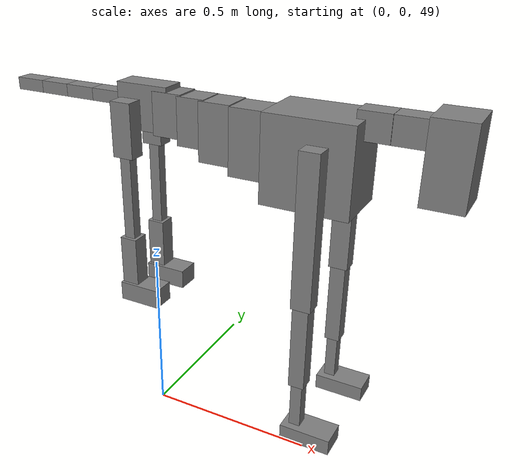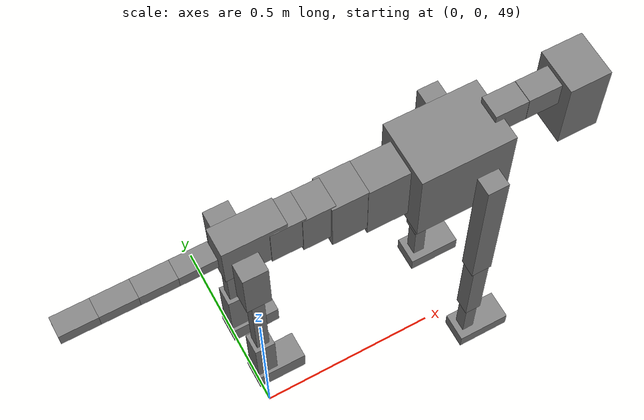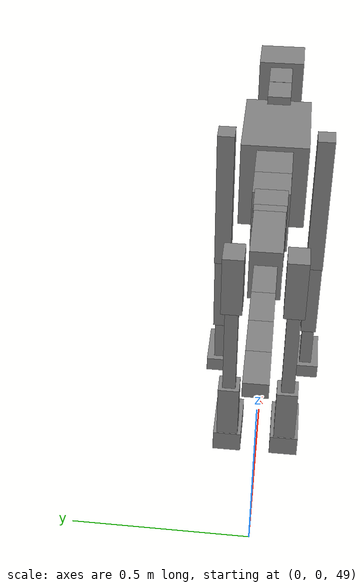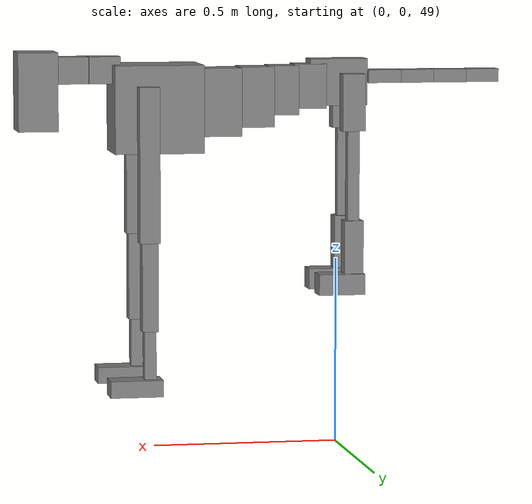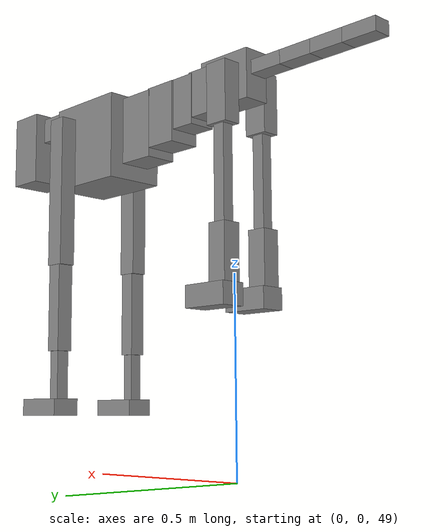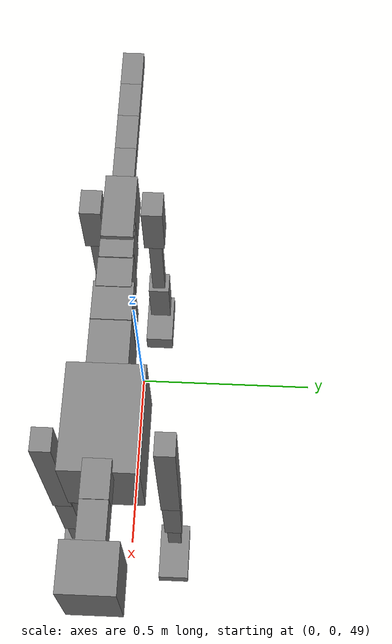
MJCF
<mujoco model="dog">

    <default>
        <joint armature="0.02" stiffness="1" damping="0.2" limited="true"/>
        <geom condim="3" friction="1 0.05 0.05" margin="0.01"/>
        <motor ctrllimited="true" ctrlrange="-1.0 1.0" forcelimited="true" gear="50"/>
    </default>

    <compiler inertiafromgeom="true" angle="radian"/>

    <option timestep="0.016" iterations="50" tolerance="1e-10" solver="Newton" jacobian="dense" cone="pyramidal"/>

    <size nconmax="20000" njmax="60000" nstack="5000000"/>
    <visual>
        <map force="0.1" zfar="30"/>
        <rgba haze="0.15 0.25 0.35 1"/>
        <quality shadowsize="2048"/>
        <global offwidth="800" offheight="800"/>
    </visual>

    <asset>
        <texture type="skybox" builtin="gradient" rgb1="0.3 0.5 0.7" rgb2="0 0 0" width="512" height="512"/>
        <texture name="texplane" type="2d" builtin="checker" rgb1=".2 .3 .4" rgb2=".1 0.15 0.2" width="512" height="512"
                 mark="cross" markrgb=".8 .8 .8"/>
        <texture name="texgeom" type="cube" builtin="flat" mark="cross" width="127" height="1278" rgb1="0.8 0.6 0.4"
                 rgb2="0.8 0.6 0.4" markrgb="1 1 1" random="0.01"/>

        <material name="matplane" reflectance="0.3" texture="texplane" texrepeat="1 1" texuniform="true"/>
        <material name="matgeom" texture="texgeom" texuniform="true" rgba="0.8 0.6 .4 1"/>
    </asset>

    <worldbody>
        <geom name="floor" pos="0 0 0" size="0 0 .25" type="plane" material="matplane" condim="3"/>

        <light directional="false" diffuse=".2 .2 .2" specular="0 0 0" pos="0 0 5" dir="0 0 -1" castshadow="false"/>
        <light mode="targetbodycom" target="torso" directional="false" diffuse=".8 .8 .8" specular="0.3 0.3 0.3"
               pos="0 0 4.0" dir="0 0 -1"/>

        <body name="root" pos="0 0 50">
            <freejoint name="root_1"/>
            <geom type="box" pos="0 0 -0.02" size="0.0774  0.0358  0.063" density="2030"/>

            <body name="spine1" pos="0.054 0 0">
                <joint name="spine1_y" axis="0 1 0" range="0 0.7" limited="true"/>
                <geom type="box" pos="0.02375 0 -0.03" size="0.04375  0.0375  0.05985" density="2030"/>

                <body name="spine2" pos="0.0612 0 0">
                    <joint name="spine2_y" axis="0 1 0" range="-0.15 0.15" limited="true"/>
                    <geom type="box" pos="0.03555  0  -0.04" size="0.04055  0.039  0.06615" density="2030"/>

                    <body name="spine3" pos="0.0730 0 0">
                        <joint name="spine3_y" axis="0 1 0" range="-0.15 0.15" limited="true"/>
                        <geom type="box" pos="0.03555  0  -0.057" size="0.04555  0.0445  0.081" density="2030"/>

                        <body name="spine4" pos="0.0780 0 0">
                            <joint name="spine4_y" axis="0 1 0" range="-0.15 0.15" limited="true"/>
                            <geom type="box" pos="0.05265  0  -0.07" size="0.05265  0.045  0.09135" density="2030"/>

                            <body name="torso" pos="0.1082 0 0">
                                <joint name="torso_y" axis="0 1 0" range="-0.15 0.15" limited="true"/>
                                <geom type="box" pos="0.11925  0  -0.085" size="0.11925  0.085  0.11745"
                                      density="2030"/>

                                <body name="neck1" pos="0.2160  0   0.0180">
                                    <joint name="neck1_y" axis="0 1 0" range="-1.2  -1" limited="true"/>
                                    <geom type="box" pos="0.0423  0  0" size="0.0423  0.03  0.036" density="2325"/>

                                    <body name="neck2" pos="0.0853  0  0">
                                        <joint name="neck2_y" axis="0 1 0" range="0.1  0" limited="true"/>
                                        <geom type="box" pos="0.0423  0  0" size="0.0423  0.03  0.036" density="2325"/>

                                        <body name="head" pos="0.0853  0  0">
                                            <joint name="head_y" axis="0 1 0" range="-0.3  -0.2" limited="true"/>
                                            <geom type="box" pos="0.0531  0  -0.055" size="0.0531  0.06  0.1044"
                                                  density="4030"/>

                                        </body>
                                    </body>
                                </body>

                                <body name="front_shoulder" pos="0.156  0   -0.0480">
                                    <joint name="front_shoulder_y" axis="0 1 0" range="-1 1.5" limited="true"/>
                                    <geom type="box" pos="0 0.13 -0.1794" size="0.0271  0.0231  0.2061" density="1158"/>
                                    <geom type="box" pos="0 -0.13 -0.1794" size="0.0271  0.0231  0.2061"
                                          density="1158"/>

                                    <body name="front_elbow" pos="0  0  -0.3588">
                                        <joint name="front_elbow_y" axis="0 1 0" range="-2 0" limited="true"/>
                                        <geom type="box" pos="0 0.13 -0.1307" size="0.0216  0.0221  0.1307"
                                              density="1081"/>
                                        <geom type="box" pos="0 -0.13 -0.1307" size="0.0216  0.0221  0.1307"
                                              density="1081"/>

                                        <body name="front_wrist" pos="0  0  -0.2613">
                                            <joint name="front_wrist_y" axis="0 1 0" range="-0.2 0" limited="true"/>
                                            <geom type="box" pos="0 0.13 -0.0716" size="0.0156  0.0173  0.0847"
                                                  density="1664"/>
                                            <geom type="box" pos="0 -0.13 -0.0716" size="0.0156  0.0173  0.0847"
                                                  density="1664"/>

                                            <body name="front_finger_end" pos="0  0  -0.1431">
                                                <joint name="front_finger_y" axis="0 1 0" range="-0.4 1"
                                                       limited="true"/>
                                                <geom type="box" pos="0.0385  0.13  -0.0072"
                                                      size="0.0706  0.0385  0.0222" density="1515"/>
                                                <geom type="box" pos="0.0385  -0.13  -0.0072"
                                                      size="0.0706  0.0385  0.0222" density="1515"/>

                                            </body>

                                        </body>
                                    </body>
                                </body>

                            </body>
                        </body>
                    </body>
                </body>
            </body>

            <body name="back_hip" pos="-0.03 0 -0.018">
                <joint name="back_hip_y" axis="0 1 0" range="-1.5 0.3" limited="true"/>
                <geom type="box" pos="0 0.07 -0.0537" size="0.0308  0.0242  0.0765" density="1154"/>
                <geom type="box" pos="0 -0.07 -0.0537" size="0.0308  0.0242  0.0765" density="1154"/>

                <body name="back_knee" pos="0  0  -0.1074">
                    <joint name="back_knee_y" axis="0 1 0" range="0 2.8" limited="true"/>
                    <geom type="box" pos="0 0.07 -0.1372" size="0.0159  0.0156  0.1528" density="1227"/>
                    <geom type="box" pos="0 -0.07 -0.1372" size="0.0159  0.0156  0.1528" density="1227"/>

                    <body name="back_ankle" pos="0  0  -0.2744">
                        <joint name="back_ankle_y" axis="0 1 0" range="-2.2 0" limited="true"/>
                        <geom type="box" pos="0 0.07 -0.0733" size="0.0255  0.0255  0.0846" density="1284"/>
                        <geom type="box" pos="0 -0.07 -0.0733" size="0.0255  0.0255  0.0846" density="1284"/>

                        <body name="back_toe_end" pos="0  0  -0.1467">
                            <joint name="back_toe_y" axis="0 1 0" range="-0.4 1" limited="true"/>
                            <geom type="box" pos="0.0340  0.07  -0.0130" size="0.0624  0.0340  0.0280" density="1515"/>
                            <geom type="box" pos="0.0340  -0.07  -0.0130" size="0.0624  0.0340  0.0280" density="1515"/>

                        </body>
                    </body>
                </body>
            </body>

            <body name="tail1" pos="-0.074 0 -0.006">
                <joint name="tail1_y" axis="0 1 0" range="-0.2 0.2" limited="true"/>
                <geom type="box" pos="-0.0536  0  0" size="0.045  0.025  0.0175" density="1587"/>

                <body name="tail2" pos="-0.09 0 0">
                    <joint name="tail2_y" axis="0 1 0" range="-0.2 0.2" limited="true"/>
                    <geom type="box" pos="-0.0536  0  0" size="0.045  0.025  0.0175" density="1587"/>

                    <body name="tail3" pos="-0.09 0 0">
                        <joint name="tail3_y" axis="0 1 0" range="-0.2 0.2" limited="true"/>
                        <geom type="box" pos="-0.0536  0  0" size="0.045  0.025  0.0175" density="1587"/>

                        <body name="tail4" pos="-0.09 0 0">
                            <joint name="tail4_y" axis="0 1 0" range="-0.2 0.2" limited="true"/>
                            <geom type="box" pos="-0.0536  0  0" size="0.045  0.025  0.0175" density="1587"/>

                        </body>
                    </body>
                </body>
            </body>
        </body>
    </worldbody>

    <actuator>
        <motor joint="spine1_y" forcerange="-150 150     "/>
        <motor joint="spine2_y" forcerange="-150 150     "/>
        <motor joint="spine3_y" forcerange="-150 150     "/>
        <motor joint="spine4_y" forcerange="-150 150     "/>
        <motor joint="torso_y" forcerange="-150 150     "/>
        <motor joint="neck1_y" forcerange="-100 100       "/>
        <motor joint="neck2_y" forcerange="-100 100       "/>
        <motor joint="head_y" forcerange="-150 150       "/>
        <motor joint="front_shoulder_y" forcerange="-146.02 108.24"/>
        <motor joint="front_elbow_y" forcerange="-156.05 104.40"/>
        <motor joint="front_wrist_y" forcerange="-87.21 51.59"/>
        <motor joint="front_finger_y" forcerange="-66.59 98.67"/>
        <motor joint="back_hip_y" forcerange="-308.73 213.48"/>
        <motor joint="back_knee_y" forcerange="-226.25 201.37"/>
        <motor joint="back_angle_y" forcerange="-248.74 59.22"/>
        <motor joint="back_toe_y" forcerange="-115.58 76.60"/>
        <motor joint="tail1_y" forcerange="-50 50     "/>
        <motor joint="tail2_y" forcerange="-50 50     "/>
        <motor joint="tail3_y" forcerange="-50 50     "/>
        <motor joint="tail4_y" forcerange="-50 50     "/>
    </actuator>
</mujoco>
